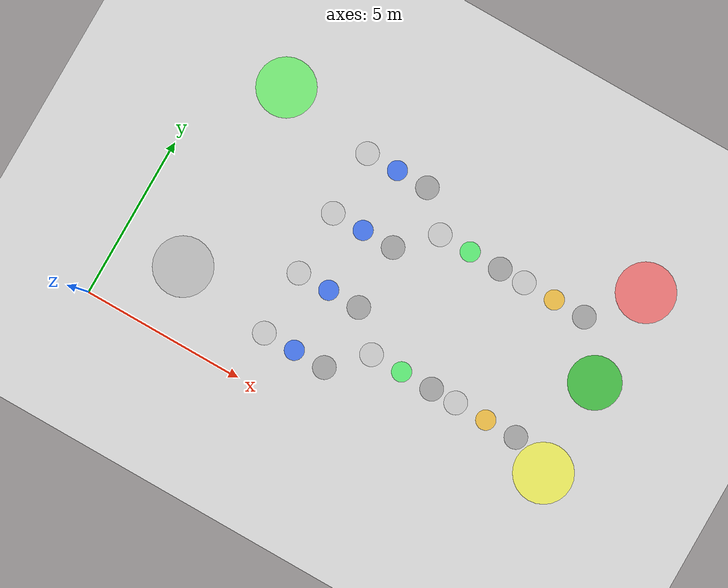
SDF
<?xml version="1.0"?>
<sdf version="1.6">
  <world name="smart_factory_10robots">

    <!-- 物理引擎设置 - 优化性能 -->
    <physics type="ode">
      <max_step_size>0.003</max_step_size>
      <real_time_factor>1</real_time_factor>
      <real_time_update_rate>333.33</real_time_update_rate>
      <ode>
        <solver>
          <type>quick</type>
          <iters>50</iters>
          <sor>1.0</sor>
        </solver>
        <constraints>
          <cfm>0.0</cfm>
          <erp>0.2</erp>
          <contact_max_correcting_vel>100.0</contact_max_correcting_vel>
          <contact_surface_layer>0.001</contact_surface_layer>
        </constraints>
      </ode>
    </physics>

    <!-- 光照 -->
    <include>
      <uri>model://sun</uri>
    </include>

    <!-- ⭐ 地面 - 扩大到 16m x 10m -->
    <model name="ground_plane">
      <static>true</static>
      <link name="link">
        <collision name="collision">
          <geometry>
            <plane>
              <normal>0 0 1</normal>
              <size>18 12</size>
            </plane>
          </geometry>
          <surface>
            <friction>
              <ode>
                <mu>100</mu>
                <mu2>50</mu2>
              </ode>
            </friction>
          </surface>
        </collision>
        <visual name="visual">
          <geometry>
            <plane>
              <normal>0 0 1</normal>
              <size>18 12</size>
            </plane>
          </geometry>
          <material>
            <ambient>0.92 0.92 0.92 1</ambient>
            <diffuse>0.92 0.92 0.92 1</diffuse>
          </material>
        </visual>
      </link>
    </model>

    <!-- ⭐⭐⭐ 新布局：存储区（扩大2.5倍） -->
    <!-- 左上：空桶 | 右上：黄桶 -->
    <!-- 左下：绿桶 | 右下：红桶 -->

    <!-- 1. 空桶存储区 - 左上角 (2.0, 2.0), radius=0.9m -->
    <model name="empty_storage_zone">
      <static>true</static>
      <pose>2.0 2.0 0.001 0 0 0</pose>
      <link name="link">
        <visual name="visual">
          <geometry>
            <cylinder>
              <radius>0.9</radius>
              <length>0.001</length>
            </cylinder>
          </geometry>
          <material>
            <ambient>0.7 0.7 0.7 1</ambient>
            <diffuse>0.8 0.8 0.8 1</diffuse>
          </material>
        </visual>
      </link>
    </model>

    <!-- 2. 绿桶存储区 - 左下角 (2.0, 8.0), radius=0.9m -->
    <model name="green_storage_zone">
      <static>true</static>
      <pose>2.0 8.0 0.001 0 0 0</pose>
      <link name="link">
        <visual name="visual">
          <geometry>
            <cylinder>
              <radius>0.9</radius>
              <length>0.001</length>
            </cylinder>
          </geometry>
          <material>
            <ambient>0.4 0.9 0.4 1</ambient>
            <diffuse>0.5 1.0 0.5 1</diffuse>
          </material>
        </visual>
      </link>
    </model>

    <!-- 3. 黄桶存储区 - 右上角 (14.0, 2.0), radius=0.9m -->
    <model name="yellow_storage_zone">
      <static>true</static>
      <pose>14.0 2.0 0.001 0 0 0</pose>
      <link name="link">
        <visual name="visual">
          <geometry>
            <cylinder>
              <radius>0.9</radius>
              <length>0.001</length>
            </cylinder>
          </geometry>
          <material>
            <ambient>1.0 0.9 0.3 1</ambient>
            <diffuse>1.0 1.0 0.4 1</diffuse>
          </material>
        </visual>
      </link>
    </model>

    <!-- 4. 红桶存储区 - 右下角 (14.0, 8.0), radius=0.9m -->
    <model name="red_storage_zone">
      <static>true</static>
      <pose>14.0 8.0 0.001 0 0 0</pose>
      <link name="link">
        <visual name="visual">
          <geometry>
            <cylinder>
              <radius>0.9</radius>
              <length>0.001</length>
            </cylinder>
          </geometry>
          <material>
            <ambient>1.0 0.4 0.4 1</ambient>
            <diffuse>1.0 0.5 0.5 1</diffuse>
          </material>
        </visual>
      </link>
    </model>

    <!-- 5. 完成区 - 右侧中间 (14.0, 5.0) -->
    <model name="completed_zone">
      <static>true</static>
      <pose>14.0 5.0 0.001 0 0 0</pose>
      <link name="link">
        <visual name="visual">
          <geometry>
            <cylinder>
              <radius>0.8</radius>
              <length>0.001</length>
            </cylinder>
          </geometry>
          <material>
            <ambient>0.2 0.7 0.2 1</ambient>
            <diffuse>0.3 0.8 0.3 1</diffuse>
          </material>
        </visual>
      </link>
    </model>

    <!-- ⭐ 梳棉机区域 (4台) - 中间左侧 -->
    <!-- 垂直排列：Y = 1.5, 3.5, 5.5, 7.5 -->
    <!-- X = 5.0（等待）, 6.0（机器）, 7.0（完成） -->

    <!-- 梳棉机等待区 -->
    <model name="carding_waiting_0">
      <static>true</static>
      <pose>5.0 1.5 0.001 0 0 0</pose>
      <link name="link">
        <visual name="visual">
          <geometry>
            <cylinder>
              <radius>0.35</radius>
              <length>0.001</length>
            </cylinder>
          </geometry>
          <material>
            <ambient>0.78 0.78 0.78 1</ambient>
            <diffuse>0.86 0.86 0.86 1</diffuse>
          </material>
        </visual>
      </link>
    </model>

    <model name="carding_waiting_1">
      <static>true</static>
      <pose>5.0 3.5 0.001 0 0 0</pose>
      <link name="link">
        <visual name="visual">
          <geometry>
            <cylinder>
              <radius>0.35</radius>
              <length>0.001</length>
            </cylinder>
          </geometry>
          <material>
            <ambient>0.78 0.78 0.78 1</ambient>
            <diffuse>0.86 0.86 0.86 1</diffuse>
          </material>
        </visual>
      </link>
    </model>

    <model name="carding_waiting_2">
      <static>true</static>
      <pose>5.0 5.5 0.001 0 0 0</pose>
      <link name="link">
        <visual name="visual">
          <geometry>
            <cylinder>
              <radius>0.35</radius>
              <length>0.001</length>
            </cylinder>
          </geometry>
          <material>
            <ambient>0.78 0.78 0.78 1</ambient>
            <diffuse>0.86 0.86 0.86 1</diffuse>
          </material>
        </visual>
      </link>
    </model>

    <model name="carding_waiting_3">
      <static>true</static>
      <pose>5.0 7.5 0.001 0 0 0</pose>
      <link name="link">
        <visual name="visual">
          <geometry>
            <cylinder>
              <radius>0.35</radius>
              <length>0.001</length>
            </cylinder>
          </geometry>
          <material>
            <ambient>0.78 0.78 0.78 1</ambient>
            <diffuse>0.86 0.86 0.86 1</diffuse>
          </material>
        </visual>
      </link>
    </model>

    <!-- 梳棉机工作区 -->
    <model name="carding_machine_0">
      <static>true</static>
      <pose>6.0 1.5 0.001 0 0 0</pose>
      <link name="link">
        <visual name="visual">
          <geometry>
            <cylinder>
              <radius>0.3</radius>
              <length>0.001</length>
            </cylinder>
          </geometry>
          <material>
            <ambient>0.2 0.4 0.9 1</ambient>
            <diffuse>0.3 0.5 1.0 1</diffuse>
          </material>
        </visual>
      </link>
    </model>

    <model name="carding_machine_1">
      <static>true</static>
      <pose>6.0 3.5 0.001 0 0 0</pose>
      <link name="link">
        <visual name="visual">
          <geometry>
            <cylinder>
              <radius>0.3</radius>
              <length>0.001</length>
            </cylinder>
          </geometry>
          <material>
            <ambient>0.2 0.4 0.9 1</ambient>
            <diffuse>0.3 0.5 1.0 1</diffuse>
          </material>
        </visual>
      </link>
    </model>

    <model name="carding_machine_2">
      <static>true</static>
      <pose>6.0 5.5 0.001 0 0 0</pose>
      <link name="link">
        <visual name="visual">
          <geometry>
            <cylinder>
              <radius>0.3</radius>
              <length>0.001</length>
            </cylinder>
          </geometry>
          <material>
            <ambient>0.2 0.4 0.9 1</ambient>
            <diffuse>0.3 0.5 1.0 1</diffuse>
          </material>
        </visual>
      </link>
    </model>

    <model name="carding_machine_3">
      <static>true</static>
      <pose>6.0 7.5 0.001 0 0 0</pose>
      <link name="link">
        <visual name="visual">
          <geometry>
            <cylinder>
              <radius>0.3</radius>
              <length>0.001</length>
            </cylinder>
          </geometry>
          <material>
            <ambient>0.2 0.4 0.9 1</ambient>
            <diffuse>0.3 0.5 1.0 1</diffuse>
          </material>
        </visual>
      </link>
    </model>

    <!-- 梳棉机完成区 -->
    <model name="carding_finished_0">
      <static>true</static>
      <pose>7.0 1.5 0.001 0 0 0</pose>
      <link name="link">
        <visual name="visual">
          <geometry>
            <cylinder>
              <radius>0.35</radius>
              <length>0.001</length>
            </cylinder>
          </geometry>
          <material>
            <ambient>0.62 0.62 0.62 1</ambient>
            <diffuse>0.70 0.70 0.70 1</diffuse>
          </material>
        </visual>
      </link>
    </model>

    <model name="carding_finished_1">
      <static>true</static>
      <pose>7.0 3.5 0.001 0 0 0</pose>
      <link name="link">
        <visual name="visual">
          <geometry>
            <cylinder>
              <radius>0.35</radius>
              <length>0.001</length>
            </cylinder>
          </geometry>
          <material>
            <ambient>0.62 0.62 0.62 1</ambient>
            <diffuse>0.70 0.70 0.70 1</diffuse>
          </material>
        </visual>
      </link>
    </model>

    <model name="carding_finished_2">
      <static>true</static>
      <pose>7.0 5.5 0.001 0 0 0</pose>
      <link name="link">
        <visual name="visual">
          <geometry>
            <cylinder>
              <radius>0.35</radius>
              <length>0.001</length>
            </cylinder>
          </geometry>
          <material>
            <ambient>0.62 0.62 0.62 1</ambient>
            <diffuse>0.70 0.70 0.70 1</diffuse>
          </material>
        </visual>
      </link>
    </model>

    <model name="carding_finished_3">
      <static>true</static>
      <pose>7.0 7.5 0.001 0 0 0</pose>
      <link name="link">
        <visual name="visual">
          <geometry>
            <cylinder>
              <radius>0.35</radius>
              <length>0.001</length>
            </cylinder>
          </geometry>
          <material>
            <ambient>0.62 0.62 0.62 1</ambient>
            <diffuse>0.70 0.70 0.70 1</diffuse>
          </material>
        </visual>
      </link>
    </model>

    <!-- ⭐ 拉伸机1区域 (2台) - 中间 -->
    <!-- X = 8.0（等待）, 9.0（机器）, 10.0（完成） -->

    <!-- 拉伸机1等待区 -->
    <model name="drawing1_waiting_0">
      <static>true</static>
      <pose>8.0 2.5 0.001 0 0 0</pose>
      <link name="link">
        <visual name="visual">
          <geometry>
            <cylinder>
              <radius>0.35</radius>
              <length>0.001</length>
            </cylinder>
          </geometry>
          <material>
            <ambient>0.78 0.78 0.78 1</ambient>
            <diffuse>0.86 0.86 0.86 1</diffuse>
          </material>
        </visual>
      </link>
    </model>

    <model name="drawing1_waiting_1">
      <static>true</static>
      <pose>8.0 6.5 0.001 0 0 0</pose>
      <link name="link">
        <visual name="visual">
          <geometry>
            <cylinder>
              <radius>0.35</radius>
              <length>0.001</length>
            </cylinder>
          </geometry>
          <material>
            <ambient>0.78 0.78 0.78 1</ambient>
            <diffuse>0.86 0.86 0.86 1</diffuse>
          </material>
        </visual>
      </link>
    </model>

    <!-- 拉伸机1工作区 -->
    <model name="drawing1_machine_0">
      <static>true</static>
      <pose>9.0 2.5 0.001 0 0 0</pose>
      <link name="link">
        <visual name="visual">
          <geometry>
            <cylinder>
              <radius>0.3</radius>
              <length>0.001</length>
            </cylinder>
          </geometry>
          <material>
            <ambient>0.3 0.9 0.4 1</ambient>
            <diffuse>0.4 1.0 0.5 1</diffuse>
          </material>
        </visual>
      </link>
    </model>

    <model name="drawing1_machine_1">
      <static>true</static>
      <pose>9.0 6.5 0.001 0 0 0</pose>
      <link name="link">
        <visual name="visual">
          <geometry>
            <cylinder>
              <radius>0.3</radius>
              <length>0.001</length>
            </cylinder>
          </geometry>
          <material>
            <ambient>0.3 0.9 0.4 1</ambient>
            <diffuse>0.4 1.0 0.5 1</diffuse>
          </material>
        </visual>
      </link>
    </model>

    <!-- 拉伸机1完成区 -->
    <model name="drawing1_finished_0">
      <static>true</static>
      <pose>10.0 2.5 0.001 0 0 0</pose>
      <link name="link">
        <visual name="visual">
          <geometry>
            <cylinder>
              <radius>0.35</radius>
              <length>0.001</length>
            </cylinder>
          </geometry>
          <material>
            <ambient>0.62 0.62 0.62 1</ambient>
            <diffuse>0.70 0.70 0.70 1</diffuse>
          </material>
        </visual>
      </link>
    </model>

    <model name="drawing1_finished_1">
      <static>true</static>
      <pose>10.0 6.5 0.001 0 0 0</pose>
      <link name="link">
        <visual name="visual">
          <geometry>
            <cylinder>
              <radius>0.35</radius>
              <length>0.001</length>
            </cylinder>
          </geometry>
          <material>
            <ambient>0.62 0.62 0.62 1</ambient>
            <diffuse>0.70 0.70 0.70 1</diffuse>
          </material>
        </visual>
      </link>
    </model>

    <!-- ⭐ 拉伸机2区域 (2台) - 靠右 -->
    <!-- X = 10.8（等待）, 11.8（机器）, 12.8（完成） -->

    <!-- 拉伸机2等待区 -->
    <model name="drawing2_waiting_0">
      <static>true</static>
      <pose>10.8 2.5 0.001 0 0 0</pose>
      <link name="link">
        <visual name="visual">
          <geometry>
            <cylinder>
              <radius>0.35</radius>
              <length>0.001</length>
            </cylinder>
          </geometry>
          <material>
            <ambient>0.78 0.78 0.78 1</ambient>
            <diffuse>0.86 0.86 0.86 1</diffuse>
          </material>
        </visual>
      </link>
    </model>

    <model name="drawing2_waiting_1">
      <static>true</static>
      <pose>10.8 6.5 0.001 0 0 0</pose>
      <link name="link">
        <visual name="visual">
          <geometry>
            <cylinder>
              <radius>0.35</radius>
              <length>0.001</length>
            </cylinder>
          </geometry>
          <material>
            <ambient>0.78 0.78 0.78 1</ambient>
            <diffuse>0.86 0.86 0.86 1</diffuse>
          </material>
        </visual>
      </link>
    </model>

    <!-- 拉伸机2工作区 -->
    <model name="drawing2_machine_0">
      <static>true</static>
      <pose>11.8 2.5 0.001 0 0 0</pose>
      <link name="link">
        <visual name="visual">
          <geometry>
            <cylinder>
              <radius>0.3</radius>
              <length>0.001</length>
            </cylinder>
          </geometry>
          <material>
            <ambient>1.0 0.7 0.2 1</ambient>
            <diffuse>1.0 0.8 0.3 1</diffuse>
          </material>
        </visual>
      </link>
    </model>

    <model name="drawing2_machine_1">
      <static>true</static>
      <pose>11.8 6.5 0.001 0 0 0</pose>
      <link name="link">
        <visual name="visual">
          <geometry>
            <cylinder>
              <radius>0.3</radius>
              <length>0.001</length>
            </cylinder>
          </geometry>
          <material>
            <ambient>1.0 0.7 0.2 1</ambient>
            <diffuse>1.0 0.8 0.3 1</diffuse>
          </material>
        </visual>
      </link>
    </model>

    <!-- 拉伸机2完成区 -->
    <model name="drawing2_finished_0">
      <static>true</static>
      <pose>12.8 2.5 0.001 0 0 0</pose>
      <link name="link">
        <visual name="visual">
          <geometry>
            <cylinder>
              <radius>0.35</radius>
              <length>0.001</length>
            </cylinder>
          </geometry>
          <material>
            <ambient>0.62 0.62 0.62 1</ambient>
            <diffuse>0.70 0.70 0.70 1</diffuse>
          </material>
        </visual>
      </link>
    </model>

    <model name="drawing2_finished_1">
      <static>true</static>
      <pose>12.8 6.5 0.001 0 0 0</pose>
      <link name="link">
        <visual name="visual">
          <geometry>
            <cylinder>
              <radius>0.35</radius>
              <length>0.001</length>
            </cylinder>
          </geometry>
          <material>
            <ambient>0.62 0.62 0.62 1</ambient>
            <diffuse>0.70 0.70 0.70 1</diffuse>
          </material>
        </visual>
      </link>
    </model>

    <!-- ⭐ GUI设置 - 俯视角度（调整到新的中心点） -->
    <gui fullscreen="0">
      <camera name="user_camera">
        <pose>8.0 -2.0 20.0 0 1.5 1.57</pose>
        <view_controller>orbit</view_controller>
      </camera>
    </gui>

  </world>
</sdf>
